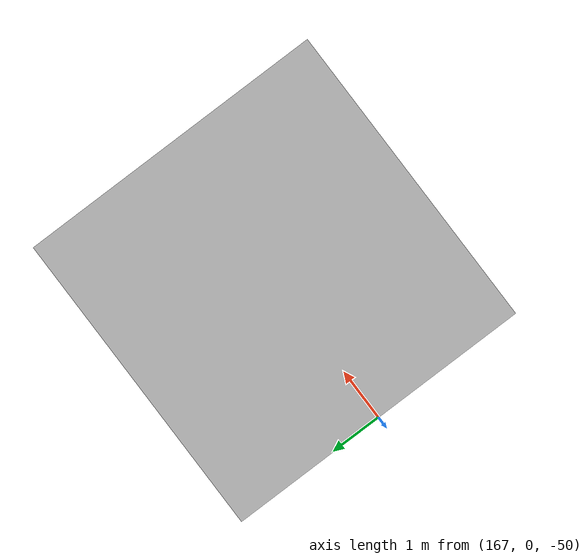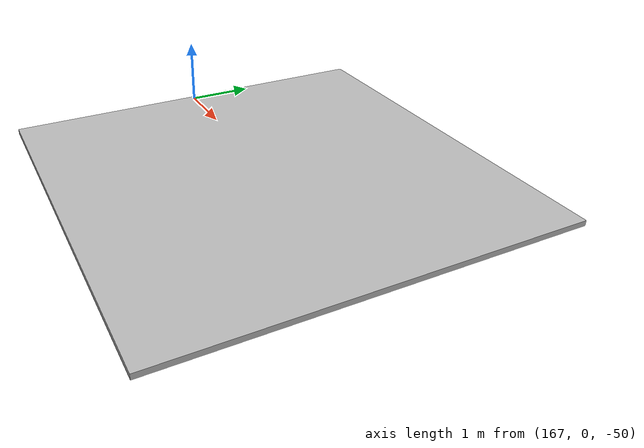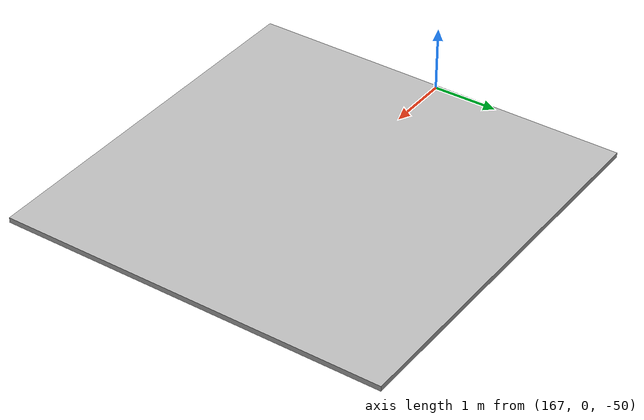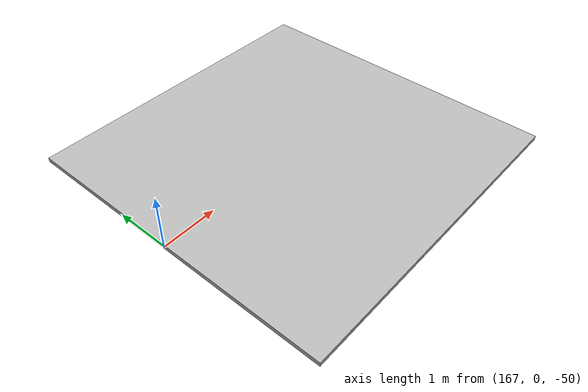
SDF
<sdf version="1.8">
  <world name="default">

    <scene>
      <ambient>0.4 0.4 0.4 1</ambient>
      <background>0.0 0.0 0.0 1</background>
      <grid>false</grid>
    </scene>

    <gui fullscreen="0">

      <!-- 3D scene -->
      <plugin filename="MinimalScene" name="3D View">
        <gz-gui>
          <title>3D View</title>
          <property type="bool" key="showTitleBar">false</property>
          <property type="string" key="state">docked</property>
        </gz-gui>

        <engine>ogre2</engine>
        <scene>scene</scene>
        <camera_pose>-10.0 -12 8.0 0 0.5 0.3</camera_pose>
      </plugin>
      <plugin filename="GzSceneManager" name="Scene Manager">
        <gz-gui>
          <property key="resizable" type="bool">false</property>
          <property key="width" type="double">5</property>
          <property key="height" type="double">5</property>
          <property key="state" type="string">floating</property>
          <property key="showTitleBar" type="bool">false</property>
        </gz-gui>
      </plugin>
      <plugin filename="InteractiveViewControl" name="Interactive view control">
        <gz-gui>
          <property key="resizable" type="bool">false</property>
          <property key="width" type="double">5</property>
          <property key="height" type="double">5</property>
          <property key="state" type="string">floating</property>
          <property key="showTitleBar" type="bool">false</property>
        </gz-gui>
      </plugin>

      <plugin filename="ImageDisplay" name="Image Display">
        <gz-gui>
          <property key="state" type="string">floating</property>
        </gz-gui>
      </plugin>

    </gui>

    <physics name='default_physics' default='1' type='ignored'>
      <max_step_size>0.01</max_step_size>
      <real_time_factor>1</real_time_factor>
      <real_time_update_rate>100</real_time_update_rate>
    </physics>

    <plugin
      filename="gz-sim-physics-system"
      name="gz::sim::systems::Physics">
    </plugin>

    <plugin
      filename="gz-sim-user-commands-system"
      name="gz::sim::systems::UserCommands">
    </plugin>

    <plugin
      filename="gz-sim-scene-broadcaster-system"
      name="gz::sim::systems::SceneBroadcaster">
    </plugin>

    <plugin
      filename="gz-sim-sensors-system"
      name="gz::sim::systems::Sensors">
      <render_engine>ogre2</render_engine>
    </plugin>

    <light type="directional" name="sun">
      <cast_shadows>true</cast_shadows>
      <pose>0 -10 10 0 0 0</pose>
      <diffuse>0.8 0.8 0.8 1</diffuse>
      <specular>0.2 0.2 0.2 1</specular>
      <attenuation>
        <range>1000</range>
        <constant>0.9</constant>
        <linear>0.01</linear>
        <quadratic>0.001</quadratic>
      </attenuation>
      <direction>10 10 -0.9</direction>
    </light>
    <gravity>0 0 0</gravity>

    <!-- Moon -->
    <include>
      <uri>model://moon</uri>
      <name>moon</name>
      <pose>170 0 -50 0 0 0.0</pose>
    </include>

  </world>

</sdf>

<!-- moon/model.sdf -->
<sdf version='1.9'>

    <model name="moon">
        <pose>170 0 -50 0 0 -1.5708</pose>
        <static>1</static>
        <link name='link'>
          <inertial>
            <mass>0.25</mass>
            <inertia>
              <ixx>1</ixx>
              <ixy>0.000</ixy>
              <ixz>0.000</ixz>
              <iyy>1</iyy>
              <iyz>0.000</iyz>
              <izz>1</izz>
            </inertia>
          </inertial>
          <visual name='visual'>
            <geometry>
              <mesh>
                <uri>model://moon/meshes/moon.dae</uri>
                <scale>1 1 1</scale>
              </mesh>
            </geometry>
          </visual>
          <velocity_decay>
            <linear>0.000000</linear>
            <angular>0.000000</angular>
          </velocity_decay>
          <self_collide>0</self_collide>
          <kinematic>0</kinematic>
          <gravity>0</gravity>
        </link>
    </model>

</sdf>
